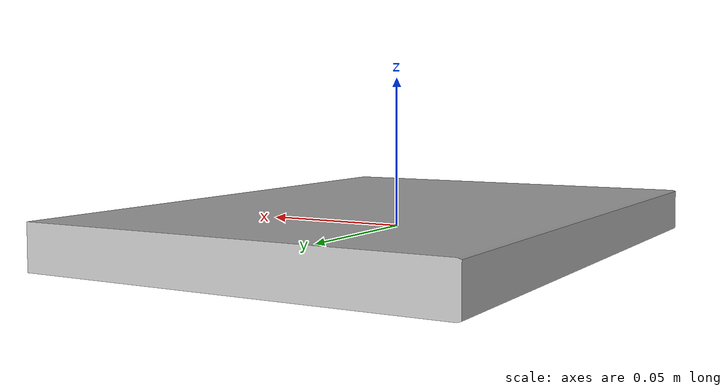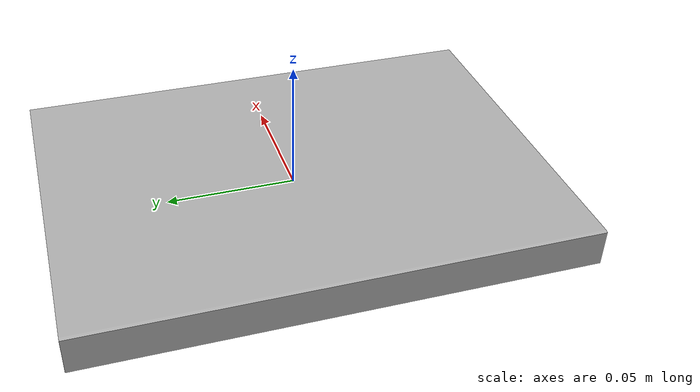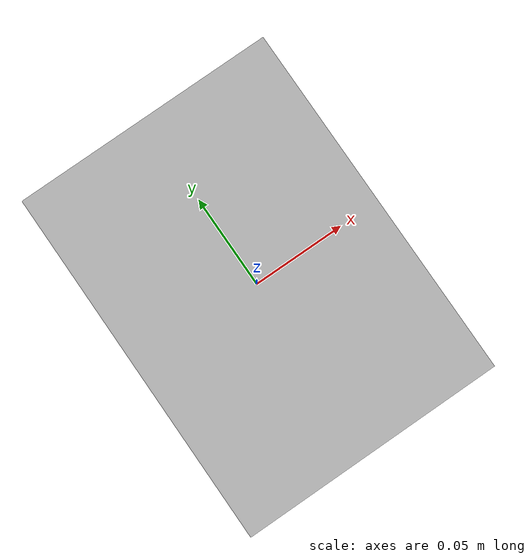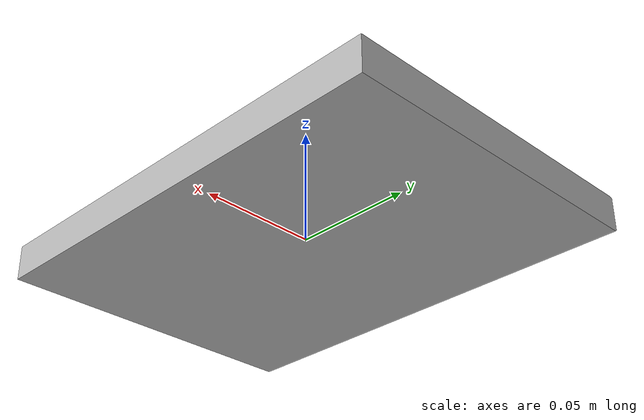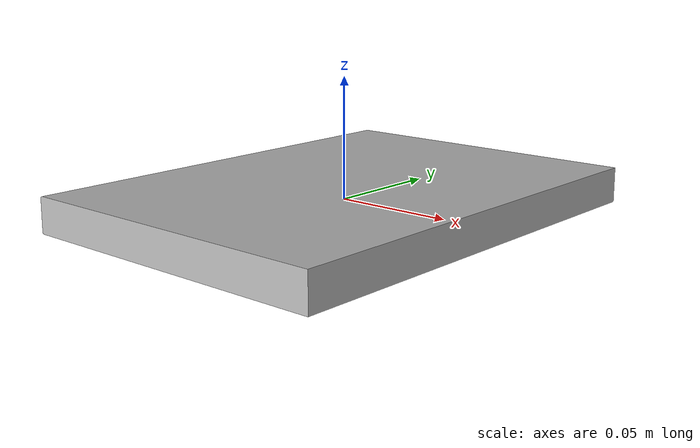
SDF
<?xml version='1.0'?>
<sdf version="1.4">
	<model name="book4">
		<static>1</static>
		<link name="link">
			<visual name="mesh">
				<geometry>
					<mesh>
						<uri>model://meshes/book4.dae</uri>
					</mesh>
				</geometry>
			</visual>
			<collision name="collider">
				<pose>0 0 0 0 0 0</pose>
				<geometry>
					<box>
						<size>0.14 0.192 0.015</size>
					</box>
				</geometry>
			</collision>
		</link>
	</model>
</sdf>
